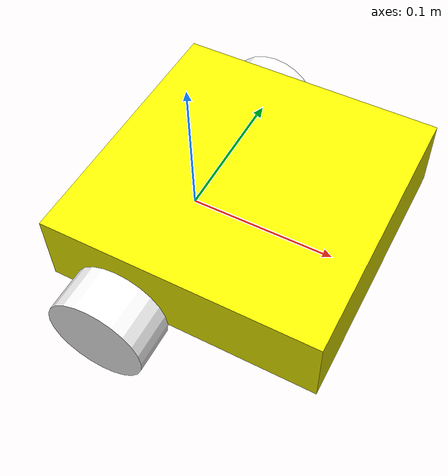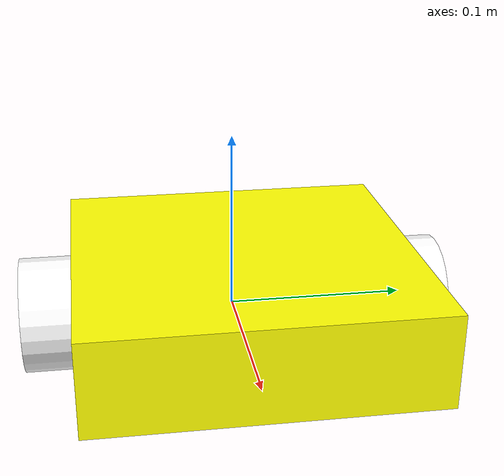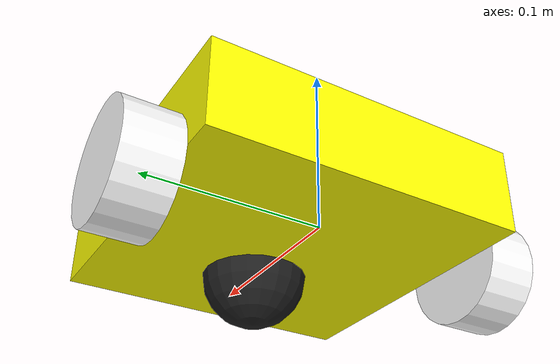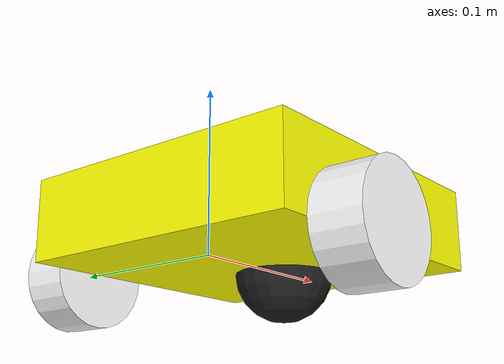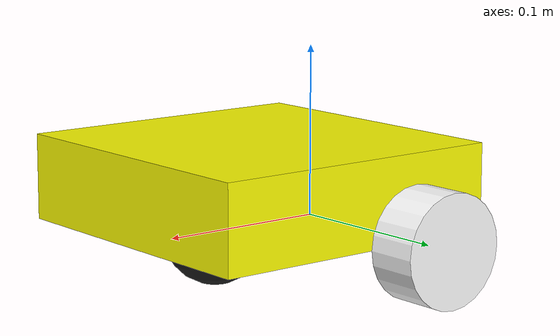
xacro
<?xml version="1.0"?>
<robot xmlns:xacro="http://www.ros.org/wiki/xacro">

   <xacro:include filename="/home/thanhtan/ros_ws/src/my_bot/description/inertial_macros.xacro"/>

     <!--Thiết lập vật liệu và màu sắc tổng thế cho robot-->
     <material name="white">
        <color rgba="1 1 1 1"/>
     </material>
     <material name="blue">
        <color rgba="0 0.255 0.255 1"/>
     </material>
     <material name="yellow">
        <color rgba="1 1 0 1"/>
     </material>
     <material name="black">
        <color rgba="0 0 0 1"/>
     </material>
     <material name="red">
      <color rgba="1 0 0 1"/>
   </material>

     <!-- Kích thước tổng quan thân robot (0.18 x 0.13 x 0.5)(d x r x c)  m  có nghĩa là sẽ không có sự di chuyển giữa các liên kết nối với khớp này -->
     <!-- Tạo liên kết cơ sở BASE_LINK -->
     <link name="base_link">

     </link>

     <!-- Chassis_link -->

     <!-- Khai báo khớp chassis_joint với kiểu là loaị khớp cứng -->
     <joint name="chassis_joint" type="fixed">
        <parent link="base_link" /> <!-- Khai báo base_link là khớp cha của chassis_joint -->
        <child link ="chassis" /> <!-- Khai báo rằng liên kết con của khớp chassis_joint là chassis -->
        <origin xyz="-0.05 0 0" />
     </joint>

     <link name="chassis">
        <visual> <!-- Thẻ mô tả hình dạng mà chúng ta sẽ thấy của khâu chassis -->
            <origin xyz="0.09 0 0.025" />
            <geometry> <!-- Hình học của khâu -->
                <box size="0.18 0.18 0.05"/>
            </geometry>
            <material name="yellow"/>
        </visual>
        <collision> <!-- Tạo va chạm -->
         <origin xyz="0.09 0 0.025" />
         <geometry> <!-- Hình học của khâu -->
             <box size="0.18 0.18 0.05"/>
         </geometry>
         <material name="yellow"/>
         </collision>
        <xacro:inertial_box mass="0.5" x="0.18" y="0.18" z="0.05">
         <origin xyz="0.09 0 0.025"/>
         </xacro:inertial_box>
     </link>

     <gazebo reference="chassis">
      <material>Gazebo/White</material>
     </gazebo>

     <!-- Bánh xe Trái (LEFT WHEEL LINK) tạo khớp động quay không giới hạn Continous -->
     <joint name="left_wheel_joint" type="continuous">
      <parent link="base_link"/>
      <child link="left_wheel"/>
      <origin xyz="0 0.105 0 " rpy="-${pi/2} 0 0"/>
      <axis xyz="0 0 1"/>
     </joint>

     <link name="left_wheel">
      <visual>
         <geometry>
            <cylinder radius="0.0325" length="0.03"/>
         </geometry>
         <material name="white"/>
      </visual>
      <collision>
         <geometry>
            <cylinder radius="0.0325" length="0.03"/>
         </geometry>
         <material name="white"/>
      </collision>
      <xacro:inertial_cylinder mass="0.05" length="0.03" radius="0.0325" >
        <origin xyz="0 0 0" rpy="0 0 0"/>
      </xacro:inertial_cylinder>
      </link>

      <gazebo reference="left_wheel">
         <material>Gazebo/Blue</material>
        </gazebo>

     <!-- BÁNH XE PHẢI (RIGHT WHEEL LINK) -->
     <joint name="right_wheel_joint" type="continuous">
      <parent link="base_link"/>
      <child link="right_wheel"/>
      <origin xyz="0 -0.105 0 " rpy="${pi/2} 0 0"/>
      <axis xyz="0 0 -1"/>
     </joint>

     <link name="right_wheel">
      <visual>
         <geometry>
            <cylinder radius="0.0325" length="0.03"/>
         </geometry>
         <material name="white"/>
      </visual>
      <collision>
         <geometry>
            <cylinder radius="0.0325" length="0.03"/>
         </geometry>
         <material name="white"/>
      </collision>
      <xacro:inertial_cylinder mass="0.05" length="0.03" radius="0.0325" >
         <origin xyz="0 0 0" rpy="0 0 0"/>
       </xacro:inertial_cylinder>
      </link>

      <gazebo reference="right_wheel">
         <material>Gazebo/Blue</material>
        </gazebo>

      <!-- Bánh đa (CASTER WHEEL LINK) -->
      <joint name="caster_wheel_link" type="fixed">
        <parent link="chassis"/>
        <child link="caster_wheel"/>
        <origin xyz="0.12 0 0"/>
      </joint>

      <link name="caster_wheel">
         <visual>
            <geometry>
               <sphere radius="0.03"/>
               <material name="black"/>
            </geometry>
         </visual>
         <collision>
            <geometry>
               <sphere radius="0.03"/>
               <material name="black"/>
            </geometry>
         </collision>
         <xacro:inertial_sphere mass="0.05" radius="0.03">
            <origin xyz="0 0 0" rpy="0 0 0"/>
         </xacro:inertial_sphere>
      </link>

      <gazebo reference="caster_wheel">
         <material>Gazebo/Black</material>
         <mu1 value="0.001"/>
         <mu2 value="0.001"/>
        </gazebo>

</robot>
